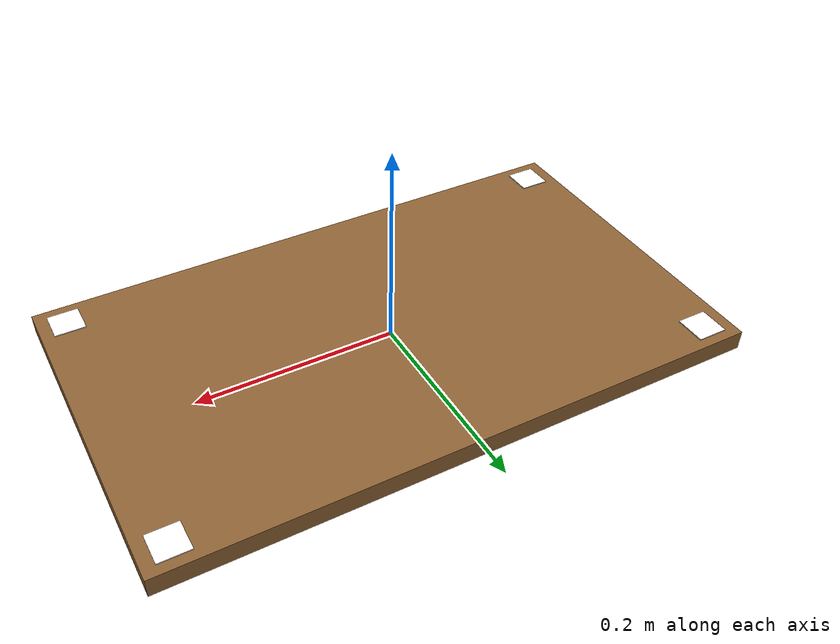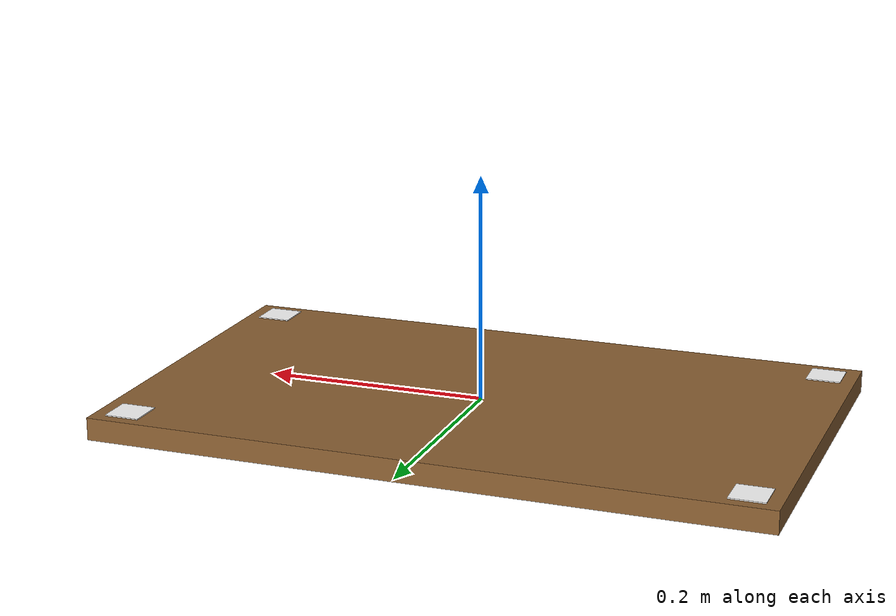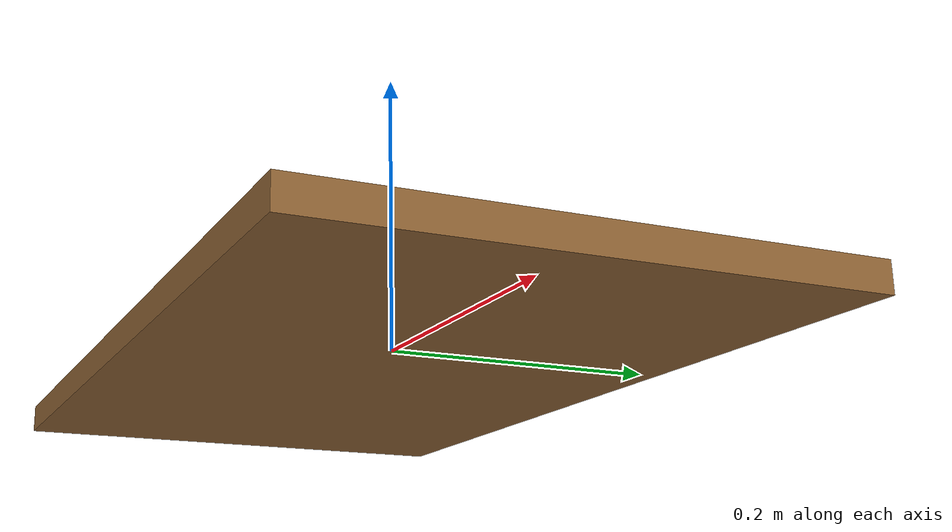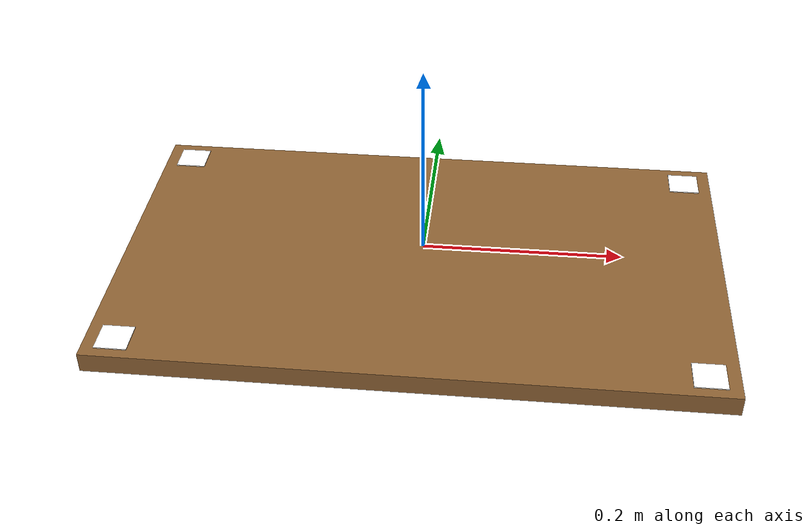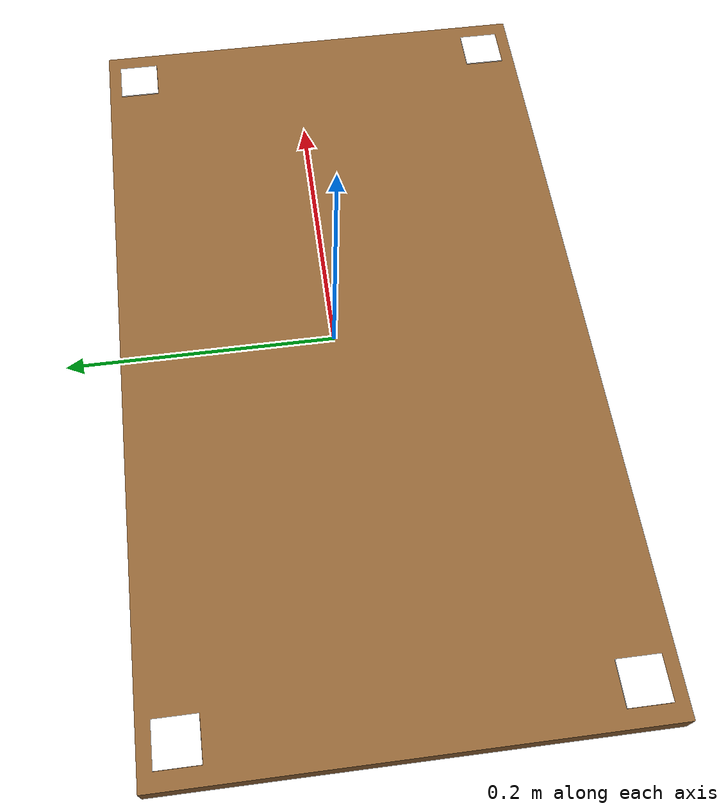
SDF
<?xml version="1.0" ?>
<sdf version="1.7">
  <model name="table">
    <static>true</static>
    <link name="top">
      <!-- table top: top face at z=0 -->
      <collision name="collision">
        <pose>0 -0.015 -0.01 0 0 0</pose>
        <geometry>
          <box><size>0.60 0.35 0.02</size></box>
        </geometry>
      </collision>
      <visual name="visual">
        <pose>0 -0.015 -0.01 0 0 0</pose>
        <geometry>
          <box><size>0.60 0.35 0.02</size></box>
        </geometry>
        <material>
          <ambient>0.55 0.38 0.20 1</ambient>
          <diffuse>0.55 0.38 0.20 1</diffuse>
        </material>
      </visual>

      <!-- 4 corner ArUco marker plates (cosmetic), 31 mm, just above the top -->
      <visual name="marker1">
        <pose>0.272 -0.1645 0.0005 0 0 0</pose>
        <geometry><box><size>0.031 0.031 0.001</size></box></geometry>
        <material><ambient>1 1 1 1</ambient><diffuse>1 1 1 1</diffuse>
          <pbr><metal><albedo_map>marker1.png</albedo_map><metalness>0.0</metalness><roughness>1.0</roughness></metal></pbr>
        </material>
      </visual>
      <visual name="marker2">
        <pose>-0.272 -0.1645 0.0005 0 0 0</pose>
        <geometry><box><size>0.031 0.031 0.001</size></box></geometry>
        <material><ambient>1 1 1 1</ambient><diffuse>1 1 1 1</diffuse>
          <pbr><metal><albedo_map>marker2.png</albedo_map><metalness>0.0</metalness><roughness>1.0</roughness></metal></pbr>
        </material>
      </visual>
      <visual name="marker3">
        <pose>-0.272 0.1345 0.0005 0 0 0</pose>
        <geometry><box><size>0.031 0.031 0.001</size></box></geometry>
        <material><ambient>1 1 1 1</ambient><diffuse>1 1 1 1</diffuse>
          <pbr><metal><albedo_map>marker3.png</albedo_map><metalness>0.0</metalness><roughness>1.0</roughness></metal></pbr>
        </material>
      </visual>
      <visual name="marker4">
        <pose>0.272 0.1345 0.0005 0 0 0</pose>
        <geometry><box><size>0.031 0.031 0.001</size></box></geometry>
        <material><ambient>1 1 1 1</ambient><diffuse>1 1 1 1</diffuse>
          <pbr><metal><albedo_map>marker4.png</albedo_map><metalness>0.0</metalness><roughness>1.0</roughness></metal></pbr>
        </material>
      </visual>
    </link>
  </model>
</sdf>
